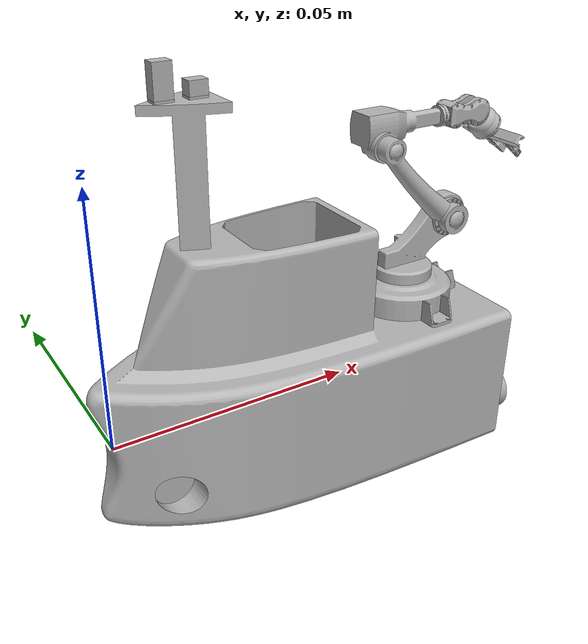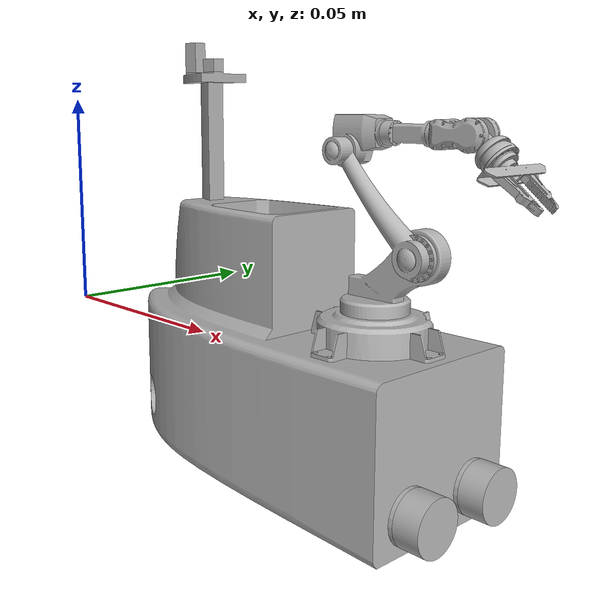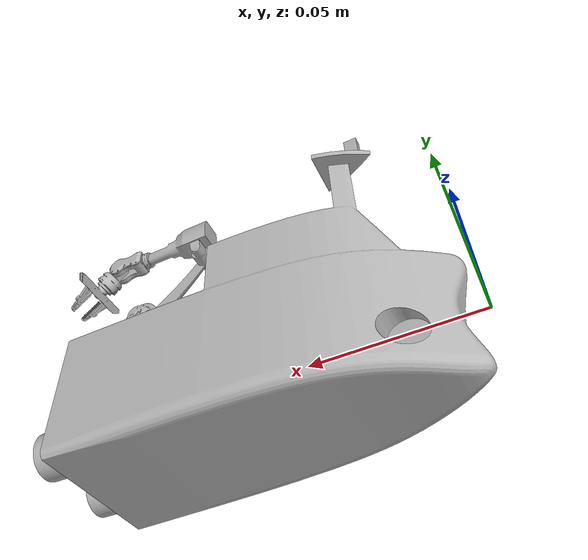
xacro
<?xml version="1.0" ?>
<robot name="baat" xmlns:xacro="http://www.ros.org/wiki/xacro">

<xacro:include filename="$(find baat_description)/urdf/materials.xacro" />
<xacro:include filename="$(find baat_description)/urdf/baat.trans" />
<xacro:include filename="$(find baat_description)/urdf/baat.gazebo" />
<link name="base_link">
  <inertial>
    <origin xyz="0.057970514069423586 0.019997048482695557 -0.013850431280397126" rpy="0 0 0"/>
    <mass value="0.8967749649563515"/>
    <inertia ixx="0.000292" iyy="0.000817" izz="0.000731" ixy="0.0" iyz="0.0" ixz="6.2e-05"/>
  </inertial>
  <visual>
    <origin xyz="0 0 0" rpy="0 0 0"/>
    <geometry>
      <mesh filename="package://baat_description/meshes/base_link.stl" scale="0.001 0.001 0.001"/>
    </geometry>
    <material name="silver"/>
  </visual>
  <collision>
    <origin xyz="0 0 0" rpy="0 0 0"/>
    <geometry>
      <mesh filename="package://baat_description/meshes/base_link.stl" scale="0.001 0.001 0.001"/>
    </geometry>
  </collision>
</link>

<link name="CenterThrusterR_1">
  <inertial>
    <origin xyz="-3.3599184892305067e-07 0.0020000000000000052 -7.55152248024804e-09" rpy="0 0 0"/>
    <mass value="0.0024661502330678834"/>
    <inertia ixx="0.0" iyy="0.0" izz="0.0" ixy="0.0" iyz="-0.0" ixz="0.0"/>
  </inertial>
  <visual>
    <origin xyz="-0.016431 -0.023 0.024634" rpy="0 0 0"/>
    <geometry>
      <mesh filename="package://baat_description/meshes/CenterThrusterR_1.stl" scale="0.001 0.001 0.001"/>
    </geometry>
    <material name="silver"/>
  </visual>
  <collision>
    <origin xyz="-0.016431 -0.023 0.024634" rpy="0 0 0"/>
    <geometry>
      <mesh filename="package://baat_description/meshes/CenterThrusterR_1.stl" scale="0.001 0.001 0.001"/>
    </geometry>
  </collision>
</link>

<link name="CenterThrusterL_1">
  <inertial>
    <origin xyz="-3.3599184892305067e-07 -0.0019999999999999966 -7.55152248024804e-09" rpy="0 0 0"/>
    <mass value="0.0024661502330678834"/>
    <inertia ixx="0.0" iyy="0.0" izz="0.0" ixy="0.0" iyz="0.0" ixz="0.0"/>
  </inertial>
  <visual>
    <origin xyz="-0.016431 -0.017 0.024634" rpy="0 0 0"/>
    <geometry>
      <mesh filename="package://baat_description/meshes/CenterThrusterL_1.stl" scale="0.001 0.001 0.001"/>
    </geometry>
    <material name="silver"/>
  </visual>
  <collision>
    <origin xyz="-0.016431 -0.017 0.024634" rpy="0 0 0"/>
    <geometry>
      <mesh filename="package://baat_description/meshes/CenterThrusterL_1.stl" scale="0.001 0.001 0.001"/>
    </geometry>
  </collision>
</link>

<link name="BackThrusterR_1">
  <inertial>
    <origin xyz="0.0030000000000000027 1.3877787807814457e-17 4.933727255178322e-07" rpy="0 0 0"/>
    <mass value="0.005326884503426852"/>
    <inertia ixx="0.0" iyy="0.0" izz="0.0" ixy="0.0" iyz="-0.0" ixz="-0.0"/>
  </inertial>
  <visual>
    <origin xyz="-0.101 -0.03 0.028146" rpy="0 0 0"/>
    <geometry>
      <mesh filename="package://baat_description/meshes/BackThrusterR_1.stl" scale="0.001 0.001 0.001"/>
    </geometry>
    <material name="silver"/>
  </visual>
  <collision>
    <origin xyz="-0.101 -0.03 0.028146" rpy="0 0 0"/>
    <geometry>
      <mesh filename="package://baat_description/meshes/BackThrusterR_1.stl" scale="0.001 0.001 0.001"/>
    </geometry>
  </collision>
</link>

<link name="BackThrusterL_1">
  <inertial>
    <origin xyz="0.0030000000000000027 6.938893903907228e-18 4.933727255247711e-07" rpy="0 0 0"/>
    <mass value="0.005326884503426849"/>
    <inertia ixx="0.0" iyy="0.0" izz="0.0" ixy="0.0" iyz="0.0" ixz="0.0"/>
  </inertial>
  <visual>
    <origin xyz="-0.101 -0.01 0.028146" rpy="0 0 0"/>
    <geometry>
      <mesh filename="package://baat_description/meshes/BackThrusterL_1.stl" scale="0.001 0.001 0.001"/>
    </geometry>
    <material name="silver"/>
  </visual>
  <collision>
    <origin xyz="-0.101 -0.01 0.028146" rpy="0 0 0"/>
    <geometry>
      <mesh filename="package://baat_description/meshes/BackThrusterL_1.stl" scale="0.001 0.001 0.001"/>
    </geometry>
  </collision>
</link>

<link name="JawL_1">
  <inertial>
    <origin xyz="0.003188632749543424 -0.0010363707756858229 -0.00266945812753646" rpy="0 0 0"/>
    <mass value="0.0001859805377055688"/>
    <inertia ixx="0.0" iyy="0.0" izz="0.0" ixy="0.0" iyz="-0.0" ixz="0.0"/>
  </inertial>
  <visual>
    <origin xyz="-0.110082 -0.027875 -0.036923" rpy="0 0 0"/>
    <geometry>
      <mesh filename="package://baat_description/meshes/JawL_1.stl" scale="0.001 0.001 0.001"/>
    </geometry>
    <material name="silver"/>
  </visual>
  <collision>
    <origin xyz="-0.110082 -0.027875 -0.036923" rpy="0 0 0"/>
    <geometry>
      <mesh filename="package://baat_description/meshes/JawL_1.stl" scale="0.001 0.001 0.001"/>
    </geometry>
  </collision>
</link>

<link name="JawR_1">
  <inertial>
    <origin xyz="0.0031648181047550655 0.001080999653406741 -0.0026611162656640236" rpy="0 0 0"/>
    <mass value="0.00018598053770558083"/>
    <inertia ixx="0.0" iyy="0.0" izz="0.0" ixy="-0.0" iyz="0.0" ixz="0.0"/>
  </inertial>
  <visual>
    <origin xyz="-0.110146 -0.018548 -0.036923" rpy="0 0 0"/>
    <geometry>
      <mesh filename="package://baat_description/meshes/JawR_1.stl" scale="0.001 0.001 0.001"/>
    </geometry>
    <material name="silver"/>
  </visual>
  <collision>
    <origin xyz="-0.110146 -0.018548 -0.036923" rpy="0 0 0"/>
    <geometry>
      <mesh filename="package://baat_description/meshes/JawR_1.stl" scale="0.001 0.001 0.001"/>
    </geometry>
  </collision>
</link>

<link name="L6_1">
  <inertial>
    <origin xyz="0.0007874438180609789 5.134649267799635e-06 -0.0006615106867333409" rpy="0 0 0"/>
    <mass value="0.0005095302243692603"/>
    <inertia ixx="0.0" iyy="0.0" izz="0.0" ixy="0.0" iyz="0.0" ixz="0.0"/>
  </inertial>
  <visual>
    <origin xyz="-0.109101 -0.02323 -0.037774" rpy="0 0 0"/>
    <geometry>
      <mesh filename="package://baat_description/meshes/L6_1.stl" scale="0.001 0.001 0.001"/>
    </geometry>
    <material name="silver"/>
  </visual>
  <collision>
    <origin xyz="-0.109101 -0.02323 -0.037774" rpy="0 0 0"/>
    <geometry>
      <mesh filename="package://baat_description/meshes/L6_1.stl" scale="0.001 0.001 0.001"/>
    </geometry>
  </collision>
</link>

<link name="L5_1">
  <inertial>
    <origin xyz="0.003679575778961483 0.0017743225942793532 -0.0030978876267520328" rpy="0 0 0"/>
    <mass value="0.001497246500423717"/>
    <inertia ixx="0.0" iyy="0.0" izz="0.0" ixy="-0.0" iyz="0.0" ixz="0.0"/>
  </inertial>
  <visual>
    <origin xyz="-0.102695 -0.021425 -0.043159" rpy="0 0 0"/>
    <geometry>
      <mesh filename="package://baat_description/meshes/L5_1.stl" scale="0.001 0.001 0.001"/>
    </geometry>
    <material name="silver"/>
  </visual>
  <collision>
    <origin xyz="-0.102695 -0.021425 -0.043159" rpy="0 0 0"/>
    <geometry>
      <mesh filename="package://baat_description/meshes/L5_1.stl" scale="0.001 0.001 0.001"/>
    </geometry>
  </collision>
</link>

<link name="L4_1">
  <inertial>
    <origin xyz="0.00713104427397937 4.948683752714622e-05 3.805345883539646e-08" rpy="0 0 0"/>
    <mass value="0.002311674355709378"/>
    <inertia ixx="0.0" iyy="0.0" izz="0.0" ixy="-0.0" iyz="0.0" ixz="0.0"/>
  </inertial>
  <visual>
    <origin xyz="-0.091876 -0.02315 -0.043159" rpy="0 0 0"/>
    <geometry>
      <mesh filename="package://baat_description/meshes/L4_1.stl" scale="0.001 0.001 0.001"/>
    </geometry>
    <material name="silver"/>
  </visual>
  <collision>
    <origin xyz="-0.091876 -0.02315 -0.043159" rpy="0 0 0"/>
    <geometry>
      <mesh filename="package://baat_description/meshes/L4_1.stl" scale="0.001 0.001 0.001"/>
    </geometry>
  </collision>
</link>

<link name="L3_1">
  <inertial>
    <origin xyz="0.003328922476330709 0.0028030098576428027 0.0029701409399272224" rpy="0 0 0"/>
    <mass value="0.006131958653152942"/>
    <inertia ixx="0.0" iyy="0.0" izz="0.0" ixy="-0.0" iyz="-0.0" ixz="-0.0"/>
  </inertial>
  <visual>
    <origin xyz="-0.073818 -0.019944 -0.039559" rpy="0 0 0"/>
    <geometry>
      <mesh filename="package://baat_description/meshes/L3_1.stl" scale="0.001 0.001 0.001"/>
    </geometry>
    <material name="silver"/>
  </visual>
  <collision>
    <origin xyz="-0.073818 -0.019944 -0.039559" rpy="0 0 0"/>
    <geometry>
      <mesh filename="package://baat_description/meshes/L3_1.stl" scale="0.001 0.001 0.001"/>
    </geometry>
  </collision>
</link>

<link name="L2_1">
  <inertial>
    <origin xyz="-0.007949601261310349 -0.002935611204925106 0.007574601119981459" rpy="0 0 0"/>
    <mass value="0.0033568476748432395"/>
    <inertia ixx="0.0" iyy="0.0" izz="0.0" ixy="-0.0" iyz="0.0" ixz="0.0"/>
  </inertial>
  <visual>
    <origin xyz="-0.093616 -0.020082 -0.01976" rpy="0 0 0"/>
    <geometry>
      <mesh filename="package://baat_description/meshes/L2_1.stl" scale="0.001 0.001 0.001"/>
    </geometry>
    <material name="silver"/>
  </visual>
  <collision>
    <origin xyz="-0.093616 -0.020082 -0.01976" rpy="0 0 0"/>
    <geometry>
      <mesh filename="package://baat_description/meshes/L2_1.stl" scale="0.001 0.001 0.001"/>
    </geometry>
  </collision>
</link>

<link name="L1_1">
  <inertial>
    <origin xyz="0.004661152958194109 0.0003532044520803135 0.005173799269211691" rpy="0 0 0"/>
    <mass value="0.00957670098137256"/>
    <inertia ixx="0.0" iyy="1e-06" izz="0.0" ixy="-0.0" iyz="-0.0" ixz="-0.0"/>
  </inertial>
  <visual>
    <origin xyz="-0.081833 -0.02 -0.00856" rpy="0 0 0"/>
    <geometry>
      <mesh filename="package://baat_description/meshes/L1_1.stl" scale="0.001 0.001 0.001"/>
    </geometry>
    <material name="silver"/>
  </visual>
  <collision>
    <origin xyz="-0.081833 -0.02 -0.00856" rpy="0 0 0"/>
    <geometry>
      <mesh filename="package://baat_description/meshes/L1_1.stl" scale="0.001 0.001 0.001"/>
    </geometry>
  </collision>
</link>

<link name="GPS_1">
  <inertial>
    <origin xyz="-2.352494810342609e-07 1.0562959936594174e-07 0.0014999999999999944" rpy="0 0 0"/>
    <mass value="0.00028259999999999955"/>
    <inertia ixx="0.0" iyy="0.0" izz="0.0" ixy="0.0" iyz="0.0" ixz="-0.0"/>
  </inertial>
  <visual>
    <origin xyz="-0.029338 -0.02 -0.0565" rpy="0 0 0"/>
    <geometry>
      <mesh filename="package://baat_description/meshes/GPS_1.stl" scale="0.001 0.001 0.001"/>
    </geometry>
    <material name="silver"/>
  </visual>
  <collision>
    <origin xyz="-0.029338 -0.02 -0.0565" rpy="0 0 0"/>
    <geometry>
      <mesh filename="package://baat_description/meshes/GPS_1.stl" scale="0.001 0.001 0.001"/>
    </geometry>
  </collision>
</link>

<link name="Camera_1">
  <inertial>
    <origin xyz="-2.3524948105854704e-07 1.0562959936594174e-07 0.00350000000000001" rpy="0 0 0"/>
    <mass value="0.0006593999999999995"/>
    <inertia ixx="0.0" iyy="0.0" izz="0.0" ixy="0.0" iyz="0.0" ixz="0.0"/>
  </inertial>
  <visual>
    <origin xyz="-0.022338 -0.02 -0.0565" rpy="0 0 0"/>
    <geometry>
      <mesh filename="package://baat_description/meshes/Camera_1.stl" scale="0.001 0.001 0.001"/>
    </geometry>
    <material name="silver"/>
  </visual>
  <collision>
    <origin xyz="-0.022338 -0.02 -0.0565" rpy="0 0 0"/>
    <geometry>
      <mesh filename="package://baat_description/meshes/Camera_1.stl" scale="0.001 0.001 0.001"/>
    </geometry>
  </collision>
</link>

<link name="GarbageBot_1">
  <inertial>
    <origin xyz="0.00041533506014303917 1.6215906267075253e-07 0.0014999999999999944" rpy="0 0 0"/>
    <mass value="0.01161386392624361"/>
    <inertia ixx="0.0" iyy="1e-06" izz="1e-06" ixy="0.0" iyz="-0.0" ixz="0.0"/>
  </inertial>
  <visual>
    <origin xyz="-0.049838 -0.02 0.03" rpy="0 0 0"/>
    <geometry>
      <mesh filename="package://baat_description/meshes/GarbageBot_1.stl" scale="0.001 0.001 0.001"/>
    </geometry>
    <material name="silver"/>
  </visual>
  <collision>
    <origin xyz="-0.049838 -0.02 0.03" rpy="0 0 0"/>
    <geometry>
      <mesh filename="package://baat_description/meshes/GarbageBot_1.stl" scale="0.001 0.001 0.001"/>
    </geometry>
  </collision>
</link>

<joint name="CenterThrusterR" type="fixed">
  <origin xyz="0.016431 0.023 -0.024634" rpy="0 0 0"/>
  <parent link="base_link"/>
  <child link="CenterThrusterR_1"/>
</joint>

<joint name="CenterThrusterL" type="fixed">
  <origin xyz="0.016431 0.017 -0.024634" rpy="0 0 0"/>
  <parent link="base_link"/>
  <child link="CenterThrusterL_1"/>
</joint>

<joint name="BackThrusterR" type="fixed">
  <origin xyz="0.101 0.03 -0.028146" rpy="0 0 0"/>
  <parent link="base_link"/>
  <child link="BackThrusterR_1"/>
</joint>

<joint name="BackThrusterL" type="fixed">
  <origin xyz="0.101 0.01 -0.028146" rpy="0 0 0"/>
  <parent link="base_link"/>
  <child link="BackThrusterL_1"/>
</joint>

<joint name="JawL" type="prismatic">
  <origin xyz="0.000981 0.004645 -0.000851" rpy="0 0 0"/>
  <parent link="L6_1"/>
  <child link="JawL_1"/>
  <axis xyz="0.0 0.999966 0.008286"/>
  <limit upper="0.005" lower="-0.003" effort="100" velocity="100"/>
</joint>

<joint name="JawR" type="prismatic">
  <origin xyz="0.001045 -0.004682 -0.000851" rpy="0 0 0"/>
  <parent link="L6_1"/>
  <child link="JawR_1"/>
  <axis xyz="0.0 0.999966 0.008286"/>
  <limit upper="0.0021" lower="-0.005" effort="100" velocity="100"/>
</joint>

<joint name="L6" type="revolute">
  <origin xyz="0.006406 0.001805 -0.005385" rpy="0 0 0"/>
  <parent link="L5_1"/>
  <child link="L6_1"/>
  <axis xyz="0.766026 0.005327 -0.642788"/>
  <limit upper="3.141593" lower="-3.141593" effort="100" velocity="100"/>
</joint>

<joint name="L5" type="revolute">
  <origin xyz="0.010819 -0.001725 0.0" rpy="0 0 0"/>
  <parent link="L4_1"/>
  <child link="L5_1"/>
  <axis xyz="0.006953 -0.999976 -0.0"/>
  <limit upper="2.617994" lower="-1.308997" effort="100" velocity="100"/>
</joint>

<joint name="L4" type="revolute">
  <origin xyz="0.018058 0.003206 0.0036" rpy="0 0 0"/>
  <parent link="L3_1"/>
  <child link="L4_1"/>
  <axis xyz="0.999976 0.006953 0.0"/>
  <limit upper="3.141593" lower="-3.141593" effort="100" velocity="100"/>
</joint>

<joint name="L3" type="revolute">
  <origin xyz="-0.019798 -0.000138 0.019799" rpy="0 0 0"/>
  <parent link="L2_1"/>
  <child link="L3_1"/>
  <axis xyz="-0.006953 0.999976 0.0"/>
  <limit upper="0.610865" lower="-4.101524" effort="100" velocity="100"/>
</joint>

<joint name="L2" type="revolute">
  <origin xyz="0.011783 8.2e-05 0.0112" rpy="0 0 0"/>
  <parent link="L1_1"/>
  <child link="L2_1"/>
  <axis xyz="0.006953 -0.999976 -0.0"/>
  <limit upper="1.134464" lower="-3.490659" effort="100" velocity="100"/>
</joint>

<joint name="L1" type="revolute">
  <origin xyz="0.081833 0.02 0.00856" rpy="0 0 0"/>
  <parent link="base_link"/>
  <child link="L1_1"/>
  <axis xyz="-0.0 -0.0 1.0"/>
  <limit upper="2.181662" lower="-2.181662" effort="100" velocity="100"/>
</joint>

<joint name="GPSmount" type="fixed">
  <origin xyz="0.029338 0.02 0.0565" rpy="0 0 0"/>
  <parent link="base_link"/>
  <child link="GPS_1"/>
</joint>

<joint name="CameraMount" type="fixed">
  <origin xyz="0.022338 0.02 0.0565" rpy="0 0 0"/>
  <parent link="base_link"/>
  <child link="Camera_1"/>
</joint>

<joint name="GarbageMount" type="fixed">
  <origin xyz="0.049838 0.02 -0.03" rpy="0 0 0"/>
  <parent link="base_link"/>
  <child link="GarbageBot_1"/>
</joint>

</robot>

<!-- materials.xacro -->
<robot name="baat" xmlns:xacro="http://www.ros.org/wiki/xacro" >

<material name="silver">
  <color rgba="0.700 0.700 0.700 1.000"/>
</material>

</robot>

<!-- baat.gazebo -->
<robot name="baat" xmlns:xacro="http://www.ros.org/wiki/xacro" >

<xacro:property name="body_color" value="Gazebo/Silver" />

<gazebo>
  <plugin name="control" filename="libgazebo_ros_control.so"/>
</gazebo>
<gazebo reference="base_link">
  <material>${body_color}</material>
  <mu1>0.2</mu1>
  <mu2>0.2</mu2>
  <selfCollide>true</selfCollide>
  <gravity>true</gravity>
</gazebo>

<gazebo reference="CenterThrusterR_1">
  <material>${body_color}</material>
  <mu1>0.2</mu1>
  <mu2>0.2</mu2>
  <selfCollide>true</selfCollide>
</gazebo>

<gazebo reference="CenterThrusterL_1">
  <material>${body_color}</material>
  <mu1>0.2</mu1>
  <mu2>0.2</mu2>
  <selfCollide>true</selfCollide>
</gazebo>

<gazebo reference="BackThrusterR_1">
  <material>${body_color}</material>
  <mu1>0.2</mu1>
  <mu2>0.2</mu2>
  <selfCollide>true</selfCollide>
</gazebo>

<gazebo reference="BackThrusterL_1">
  <material>${body_color}</material>
  <mu1>0.2</mu1>
  <mu2>0.2</mu2>
  <selfCollide>true</selfCollide>
</gazebo>

<gazebo reference="JawL_1">
  <material>${body_color}</material>
  <mu1>0.2</mu1>
  <mu2>0.2</mu2>
  <selfCollide>true</selfCollide>
</gazebo>

<gazebo reference="JawR_1">
  <material>${body_color}</material>
  <mu1>0.2</mu1>
  <mu2>0.2</mu2>
  <selfCollide>true</selfCollide>
</gazebo>

<gazebo reference="L6_1">
  <material>${body_color}</material>
  <mu1>0.2</mu1>
  <mu2>0.2</mu2>
  <selfCollide>true</selfCollide>
</gazebo>

<gazebo reference="L5_1">
  <material>${body_color}</material>
  <mu1>0.2</mu1>
  <mu2>0.2</mu2>
  <selfCollide>true</selfCollide>
</gazebo>

<gazebo reference="L4_1">
  <material>${body_color}</material>
  <mu1>0.2</mu1>
  <mu2>0.2</mu2>
  <selfCollide>true</selfCollide>
</gazebo>

<gazebo reference="L3_1">
  <material>${body_color}</material>
  <mu1>0.2</mu1>
  <mu2>0.2</mu2>
  <selfCollide>true</selfCollide>
</gazebo>

<gazebo reference="L2_1">
  <material>${body_color}</material>
  <mu1>0.2</mu1>
  <mu2>0.2</mu2>
  <selfCollide>true</selfCollide>
</gazebo>

<gazebo reference="L1_1">
  <material>${body_color}</material>
  <mu1>0.2</mu1>
  <mu2>0.2</mu2>
  <selfCollide>true</selfCollide>
</gazebo>

<gazebo reference="GPS_1">
  <material>${body_color}</material>
  <mu1>0.2</mu1>
  <mu2>0.2</mu2>
  <selfCollide>true</selfCollide>
</gazebo>

<gazebo reference="Camera_1">
  <material>${body_color}</material>
  <mu1>0.2</mu1>
  <mu2>0.2</mu2>
  <selfCollide>true</selfCollide>
</gazebo>

<gazebo reference="GarbageBot_1">
  <material>${body_color}</material>
  <mu1>0.2</mu1>
  <mu2>0.2</mu2>
  <selfCollide>true</selfCollide>
</gazebo>

</robot>
